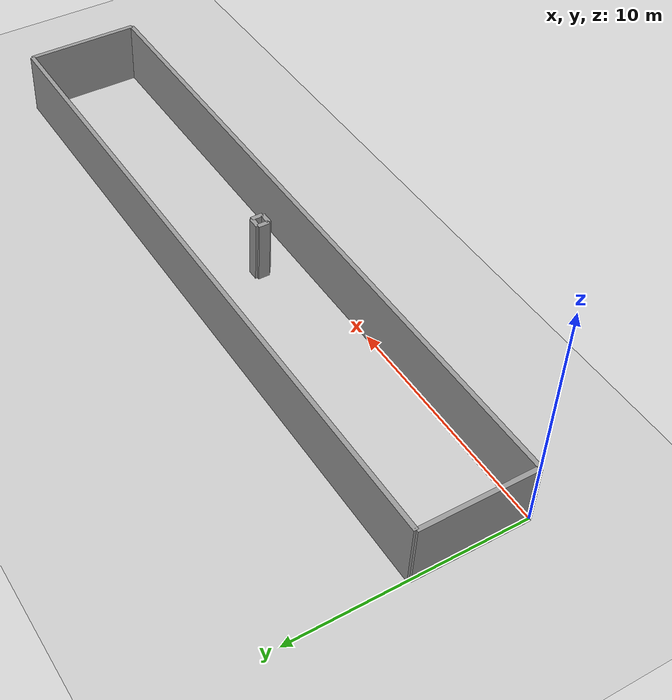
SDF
<?xml version="1.0" ?>

    <!-- this file is auto generated using pedsim_gazebo_plugin pkg -->
    <sdf version="1.5">
      <world name="default">

      <!-- Ground Plane -->

      <include>
        <uri>model://ground_plane</uri>
      </include>

      <include>
        <uri>model://sun</uri>
      </include>

    <model name='grey_wall_0'>
    <static>1</static>
    <link name='link'>

	  <pose frame=''>15.0 0.0  1.4 0 0 0.0</pose>

    <collision name='collision'>
      <geometry>
        <box>

	     <size> 30.0 .2  2.8 </size>

     	   </box>
         </geometry>
         <max_contacts>10</max_contacts>
         <surface>
           <contact>
             <ode/>
           </contact>
           <bounce/>
           <friction>
             <torsional>
               <ode/>
             </torsional>
             <ode/>
           </friction>
         </surface>
       </collision>
       <visual name='visual'>
         <cast_shadows>0</cast_shadows>
         <geometry>
           <box>

	     <size> 30.0 .2  2.8 </size>

     	   </box>
      </geometry>
         <material>
           <script>
             <uri>model://grey_wall/materials/scripts</uri>
             <uri>model://grey_wall/materials/textures</uri>
             <name>vrc/grey_wall</name>
           </script>
         </material>
       </visual>
       <self_collide>0</self_collide>
       <enable_wind>0</enable_wind>
       <kinematic>0</kinematic>
     </link>
    </model>

    <model name='grey_wall_1'>
    <static>1</static>
    <link name='link'>

	  <pose frame=''>0.0 2.5  1.4 0 0 1.57</pose>

    <collision name='collision'>
      <geometry>
        <box>

	     <size> 5.0 .2  2.8 </size>

     	   </box>
         </geometry>
         <max_contacts>10</max_contacts>
         <surface>
           <contact>
             <ode/>
           </contact>
           <bounce/>
           <friction>
             <torsional>
               <ode/>
             </torsional>
             <ode/>
           </friction>
         </surface>
       </collision>
       <visual name='visual'>
         <cast_shadows>0</cast_shadows>
         <geometry>
           <box>

	     <size> 5.0 .2  2.8 </size>

     	   </box>
      </geometry>
         <material>
           <script>
             <uri>model://grey_wall/materials/scripts</uri>
             <uri>model://grey_wall/materials/textures</uri>
             <name>vrc/grey_wall</name>
           </script>
         </material>
       </visual>
       <self_collide>0</self_collide>
       <enable_wind>0</enable_wind>
       <kinematic>0</kinematic>
     </link>
    </model>

    <model name='grey_wall_2'>
    <static>1</static>
    <link name='link'>

	  <pose frame=''>15.0 5.0  1.4 0 0 0.0</pose>

    <collision name='collision'>
      <geometry>
        <box>

	     <size> 30.0 .2  2.8 </size>

     	   </box>
         </geometry>
         <max_contacts>10</max_contacts>
         <surface>
           <contact>
             <ode/>
           </contact>
           <bounce/>
           <friction>
             <torsional>
               <ode/>
             </torsional>
             <ode/>
           </friction>
         </surface>
       </collision>
       <visual name='visual'>
         <cast_shadows>0</cast_shadows>
         <geometry>
           <box>

	     <size> 30.0 .2  2.8 </size>

     	   </box>
      </geometry>
         <material>
           <script>
             <uri>model://grey_wall/materials/scripts</uri>
             <uri>model://grey_wall/materials/textures</uri>
             <name>vrc/grey_wall</name>
           </script>
         </material>
       </visual>
       <self_collide>0</self_collide>
       <enable_wind>0</enable_wind>
       <kinematic>0</kinematic>
     </link>
    </model>

    <model name='grey_wall_3'>
    <static>1</static>
    <link name='link'>

	  <pose frame=''>30.0 2.5  1.4 0 0 1.57</pose>

    <collision name='collision'>
      <geometry>
        <box>

	     <size> 5.0 .2  2.8 </size>

     	   </box>
         </geometry>
         <max_contacts>10</max_contacts>
         <surface>
           <contact>
             <ode/>
           </contact>
           <bounce/>
           <friction>
             <torsional>
               <ode/>
             </torsional>
             <ode/>
           </friction>
         </surface>
       </collision>
       <visual name='visual'>
         <cast_shadows>0</cast_shadows>
         <geometry>
           <box>

	     <size> 5.0 .2  2.8 </size>

     	   </box>
      </geometry>
         <material>
           <script>
             <uri>model://grey_wall/materials/scripts</uri>
             <uri>model://grey_wall/materials/textures</uri>
             <name>vrc/grey_wall</name>
           </script>
         </material>
       </visual>
       <self_collide>0</self_collide>
       <enable_wind>0</enable_wind>
       <kinematic>0</kinematic>
     </link>
    </model>

    <model name='grey_wall_4'>
    <static>1</static>
    <link name='link'>

	  <pose frame=''>15.25 2.0  1.4 0 0 0.0</pose>

    <collision name='collision'>
      <geometry>
        <box>

	     <size> 0.5 .2  2.8 </size>

     	   </box>
         </geometry>
         <max_contacts>10</max_contacts>
         <surface>
           <contact>
             <ode/>
           </contact>
           <bounce/>
           <friction>
             <torsional>
               <ode/>
             </torsional>
             <ode/>
           </friction>
         </surface>
       </collision>
       <visual name='visual'>
         <cast_shadows>0</cast_shadows>
         <geometry>
           <box>

	     <size> 0.5 .2  2.8 </size>

     	   </box>
      </geometry>
         <material>
           <script>
             <uri>model://grey_wall/materials/scripts</uri>
             <uri>model://grey_wall/materials/textures</uri>
             <name>vrc/grey_wall</name>
           </script>
         </material>
       </visual>
       <self_collide>0</self_collide>
       <enable_wind>0</enable_wind>
       <kinematic>0</kinematic>
     </link>
    </model>

    <model name='grey_wall_5'>
    <static>1</static>
    <link name='link'>

	  <pose frame=''>15.0 1.75  1.4 0 0 1.57</pose>

    <collision name='collision'>
      <geometry>
        <box>

	     <size> 0.5 .2  2.8 </size>

     	   </box>
         </geometry>
         <max_contacts>10</max_contacts>
         <surface>
           <contact>
             <ode/>
           </contact>
           <bounce/>
           <friction>
             <torsional>
               <ode/>
             </torsional>
             <ode/>
           </friction>
         </surface>
       </collision>
       <visual name='visual'>
         <cast_shadows>0</cast_shadows>
         <geometry>
           <box>

	     <size> 0.5 .2  2.8 </size>

     	   </box>
      </geometry>
         <material>
           <script>
             <uri>model://grey_wall/materials/scripts</uri>
             <uri>model://grey_wall/materials/textures</uri>
             <name>vrc/grey_wall</name>
           </script>
         </material>
       </visual>
       <self_collide>0</self_collide>
       <enable_wind>0</enable_wind>
       <kinematic>0</kinematic>
     </link>
    </model>

    <model name='grey_wall_6'>
    <static>1</static>
    <link name='link'>

	  <pose frame=''>15.25 1.5  1.4 0 0 0.0</pose>

    <collision name='collision'>
      <geometry>
        <box>

	     <size> 0.5 .2  2.8 </size>

     	   </box>
         </geometry>
         <max_contacts>10</max_contacts>
         <surface>
           <contact>
             <ode/>
           </contact>
           <bounce/>
           <friction>
             <torsional>
               <ode/>
             </torsional>
             <ode/>
           </friction>
         </surface>
       </collision>
       <visual name='visual'>
         <cast_shadows>0</cast_shadows>
         <geometry>
           <box>

	     <size> 0.5 .2  2.8 </size>

     	   </box>
      </geometry>
         <material>
           <script>
             <uri>model://grey_wall/materials/scripts</uri>
             <uri>model://grey_wall/materials/textures</uri>
             <name>vrc/grey_wall</name>
           </script>
         </material>
       </visual>
       <self_collide>0</self_collide>
       <enable_wind>0</enable_wind>
       <kinematic>0</kinematic>
     </link>
    </model>

    <model name='grey_wall_7'>
    <static>1</static>
    <link name='link'>

	  <pose frame=''>15.5 1.75  1.4 0 0 1.57</pose>

    <collision name='collision'>
      <geometry>
        <box>

	     <size> 0.5 .2  2.8 </size>

     	   </box>
         </geometry>
         <max_contacts>10</max_contacts>
         <surface>
           <contact>
             <ode/>
           </contact>
           <bounce/>
           <friction>
             <torsional>
               <ode/>
             </torsional>
             <ode/>
           </friction>
         </surface>
       </collision>
       <visual name='visual'>
         <cast_shadows>0</cast_shadows>
         <geometry>
           <box>

	     <size> 0.5 .2  2.8 </size>

     	   </box>
      </geometry>
         <material>
           <script>
             <uri>model://grey_wall/materials/scripts</uri>
             <uri>model://grey_wall/materials/textures</uri>
             <name>vrc/grey_wall</name>
           </script>
         </material>
       </visual>
       <self_collide>0</self_collide>
       <enable_wind>0</enable_wind>
       <kinematic>0</kinematic>
     </link>
    </model>

            <plugin name="ActorPosesPlugin" filename="libActorPosesPlugin.so">
        </plugin>

      </world>
    </sdf>
